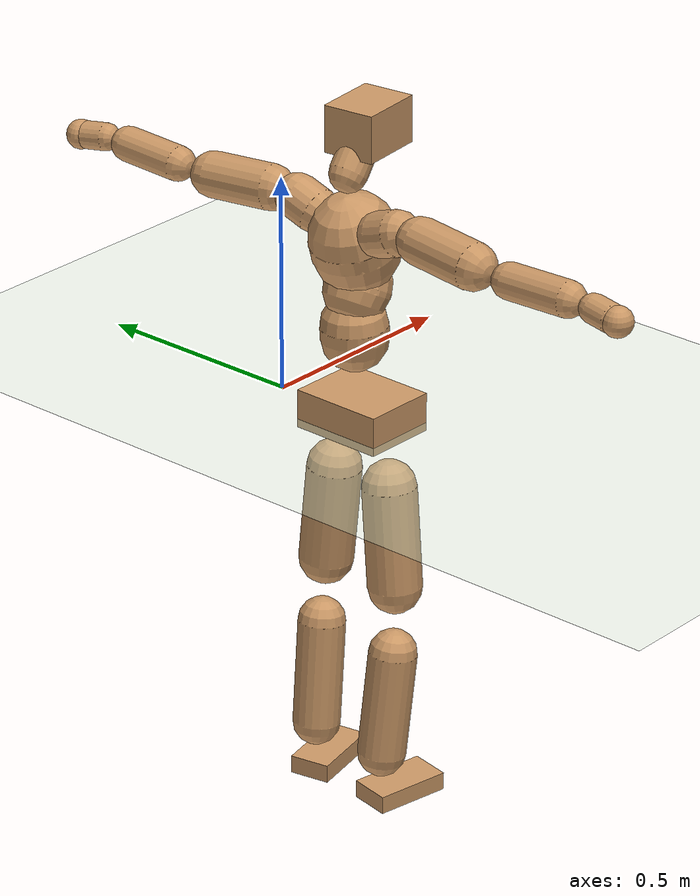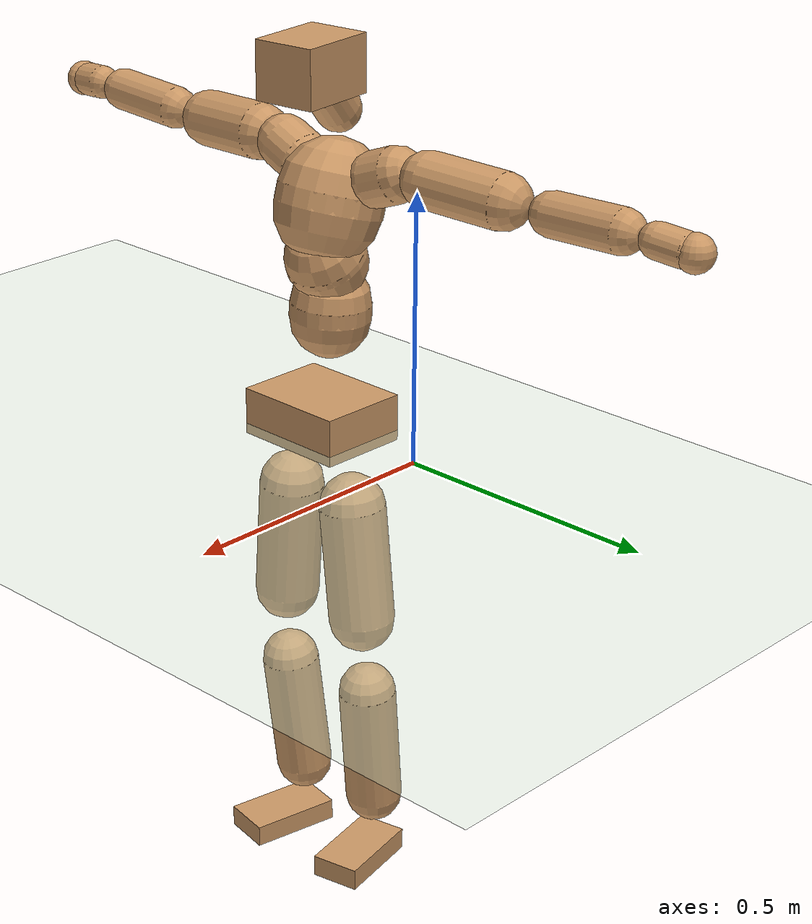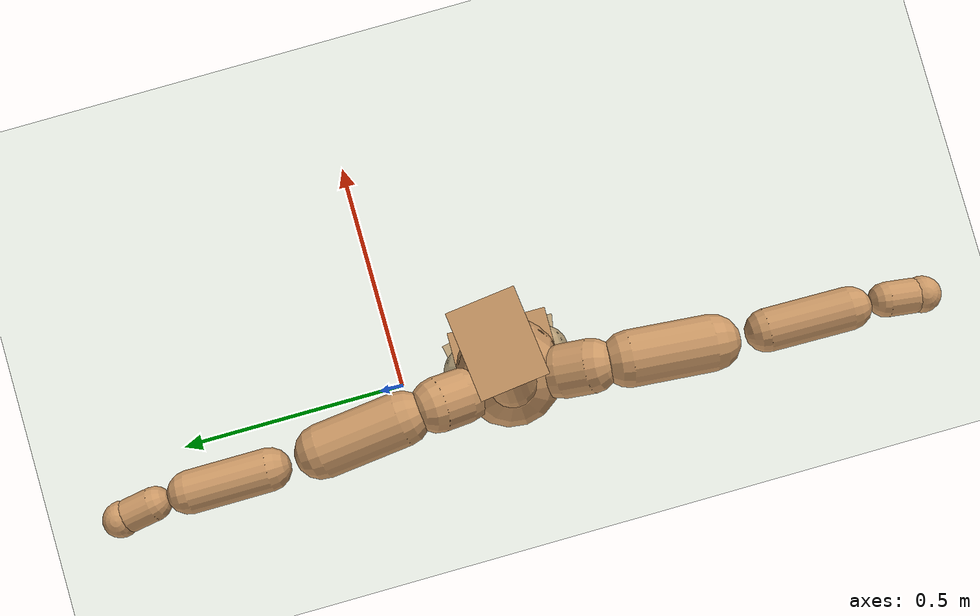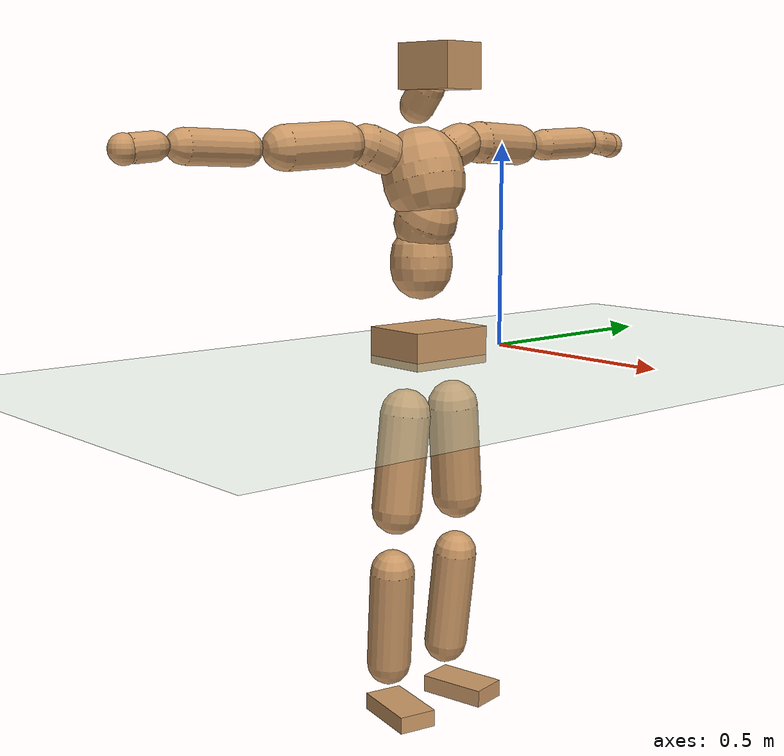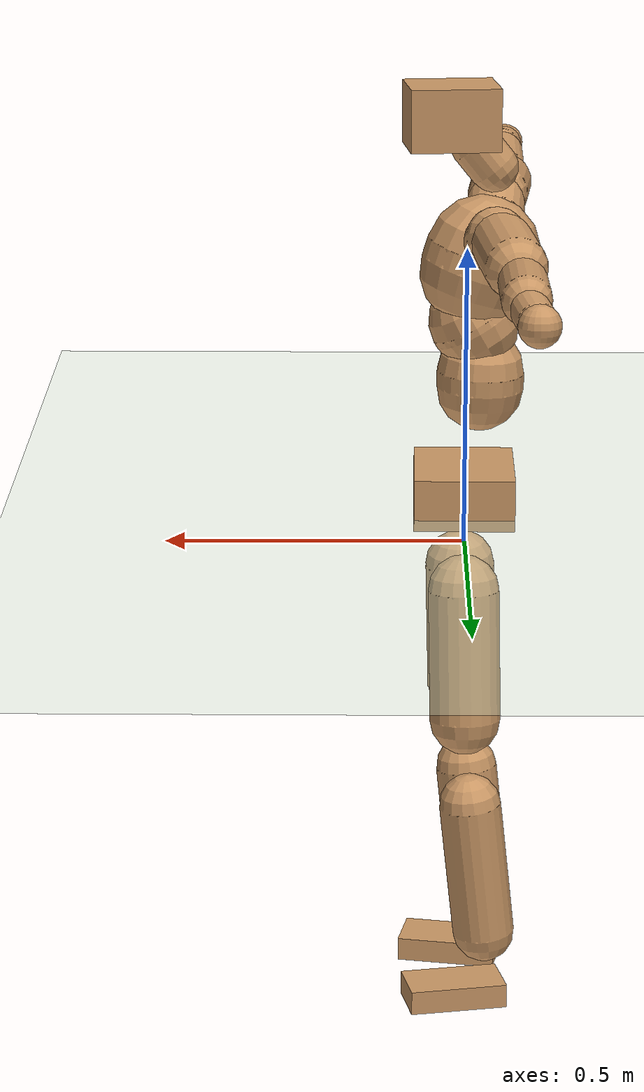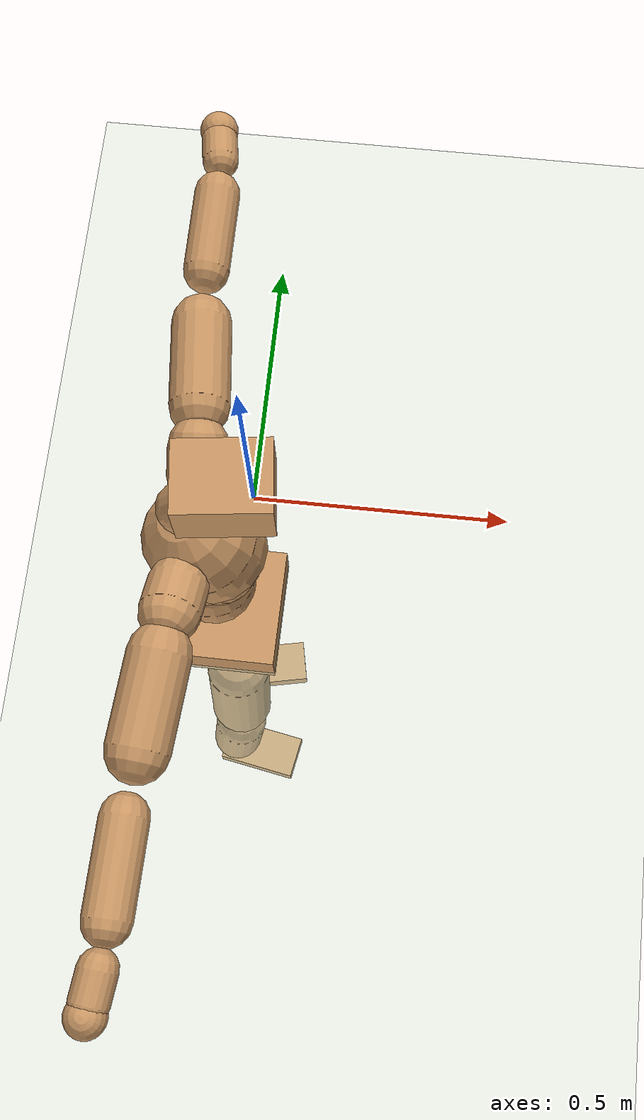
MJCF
<mujoco model="humanoid">
  <compiler coordinate="local" angle="radian"/>
  <default>
    <joint damping="0.0" armature="0.01" stiffness="0.0" limited="true"/>
    <geom conaffinity="1" condim="3" contype="7" margin="0.001" rgba="0.8 0.6 .4 1"/>
  </default>
  <asset>
    <texture type="skybox" builtin="gradient" rgb1=".4 .5 .6" rgb2="0 0 0" width="100" height="100"/>
    <texture builtin="flat" height="1278" mark="cross" markrgb="1 1 1" name="texgeom" random="0.01" rgb1="0.8 0.6 0.4" rgb2="0.8 0.6 0.4" type="cube" width="127"/>
    <texture builtin="checker" height="100" name="texplane" rgb1="0 0 0" rgb2="0.8 0.8 0.8" type="2d" width="100"/>
    <material name="MatPlane" reflectance="0.5" shininess="1" specular="1" texrepeat="60 60" texture="texplane"/>
    <material name="geom" texture="texgeom" texuniform="true"/>
  </asset>
  <worldbody>
    <light cutoff="100" diffuse="1 1 1" dir="-0 0 -1.3" directional="true" exponent="1" pos="0 0 1.3" specular=".1 .1 .1"/>
    <geom conaffinity="1" condim="3" name="floor" pos="0 0 0" rgba="0.8 0.9 0.8 1" size="100 100 .2" type="plane" material="MatPlane"/>
    <body name="Pelvis" pos="0.0004 -0.2364 0.0361">
      <freejoint name="Pelvis"/>
      <geom type="box" contype="1" conaffinity="1" density="500" pos="-0.0056 0.0001 -0.0131" size="0.0865 0.1093 0.0446" quat="1.0000 0.0000 0.0000 -0.0047" name="Pelvis"/>
      <body name="L_Hip" pos="-0.0038 0.0725 -0.0959">
        <joint name="L_Hip_x" type="hinge" pos="0 0 0" axis="1 0 0" stiffness="800" damping="80" armature="0.02" range="-180.0000 180.0000"/>
        <joint name="L_Hip_y" type="hinge" pos="0 0 0" axis="0 1 0" stiffness="800" damping="80" armature="0.02" range="-180.0000 180.0000"/>
        <joint name="L_Hip_z" type="hinge" pos="0 0 0" axis="0 0 1" stiffness="800" damping="80" armature="0.02" range="-180.0000 180.0000"/>
        <geom type="capsule" contype="1" conaffinity="1" density="500" fromto="-0.0016 0.0067 -0.0766 -0.0064 0.0268 -0.3064" size="0.062" name="L_Hip"/>
        <body name="L_Knee" pos="-0.008 0.0335 -0.383">
          <joint name="L_Knee_x" type="hinge" pos="0 0 0" axis="1 0 0" stiffness="800" damping="80" armature="0.02" range="-180.0000 180.0000"/>
          <joint name="L_Knee_y" type="hinge" pos="0 0 0" axis="0 1 0" stiffness="800" damping="80" armature="0.02" range="-180.0000 180.0000"/>
          <joint name="L_Knee_z" type="hinge" pos="0 0 0" axis="0 0 1" stiffness="800" damping="80" armature="0.02" range="-180.0000 180.0000"/>
          <geom type="capsule" contype="1" conaffinity="1" density="500" fromto="-0.0089 -0.0025 -0.0814 -0.0357 -0.0098 -0.3256" size="0.0544" name="L_Knee"/>
          <body name="L_Ankle" pos="-0.0446 -0.0123 -0.4069">
            <joint name="L_Ankle_x" type="hinge" pos="0 0 0" axis="1 0 0" stiffness="800" damping="80" armature="0.02" range="-180.0000 180.0000"/>
            <joint name="L_Ankle_y" type="hinge" pos="0 0 0" axis="0 1 0" stiffness="800" damping="80" armature="0.02" range="-180.0000 180.0000"/>
            <joint name="L_Ankle_z" type="hinge" pos="0 0 0" axis="0 0 1" stiffness="800" damping="80" armature="0.02" range="-180.0000 180.0000"/>
            <geom type="box" contype="1" conaffinity="1" density="500" pos="0.0607 0.0124 -0.0292" size="0.0864 0.0467 0.0212" quat="0.9950 0.0000 0.0000 0.1003" name="L_Ankle"/>
            <body name="L_Toe" pos="0.1213 0.0247 -0.0584">
              <joint name="L_Toe_x" type="hinge" pos="0 0 0" axis="1 0 0" stiffness="500" damping="50" armature="0.02" range="-180.0000 180.0000"/>
              <joint name="L_Toe_y" type="hinge" pos="0 0 0" axis="0 1 0" stiffness="500" damping="50" armature="0.02" range="-180.0000 180.0000"/>
              <joint name="L_Toe_z" type="hinge" pos="0 0 0" axis="0 0 1" stiffness="500" damping="50" armature="0.02" range="-180.0000 180.0000"/>
              <geom type="box" contype="1" conaffinity="1" density="500" pos="0.0000 0.0000 0.0291" size="0.0009 0.0023 0.0011" quat="0.9943 0.0000 0.0000 0.1064" name="L_Toe"/>
            </body>
          </body>
        </body>
      </body>
      <body name="R_Hip" pos="-0.0009 -0.069 -0.0955">
        <joint name="R_Hip_x" type="hinge" pos="0 0 0" axis="1 0 0" stiffness="800" damping="80" armature="0.02" range="-180.0000 180.0000"/>
        <joint name="R_Hip_y" type="hinge" pos="0 0 0" axis="0 1 0" stiffness="800" damping="80" armature="0.02" range="-180.0000 180.0000"/>
        <joint name="R_Hip_z" type="hinge" pos="0 0 0" axis="0 0 1" stiffness="800" damping="80" armature="0.02" range="-180.0000 180.0000"/>
        <geom type="capsule" contype="1" conaffinity="1" density="500" fromto="-0.0020 -0.0078 -0.0782 -0.0081 -0.0311 -0.3126" size="0.0612" name="R_Hip"/>
        <body name="R_Knee" pos="-0.0101 -0.0388 -0.3908">
          <joint name="R_Knee_x" type="hinge" pos="0 0 0" axis="1 0 0" stiffness="800" damping="80" armature="0.02" range="-180.0000 180.0000"/>
          <joint name="R_Knee_y" type="hinge" pos="0 0 0" axis="0 1 0" stiffness="800" damping="80" armature="0.02" range="-180.0000 180.0000"/>
          <joint name="R_Knee_z" type="hinge" pos="0 0 0" axis="0 0 1" stiffness="800" damping="80" armature="0.02" range="-180.0000 180.0000"/>
          <geom type="capsule" contype="1" conaffinity="1" density="500" fromto="-0.0088 0.0029 -0.0816 -0.0351 0.0118 -0.3264" size="0.0547" name="R_Knee"/>
          <body name="R_Ankle" pos="-0.0439 0.0147 -0.408">
            <joint name="R_Ankle_x" type="hinge" pos="0 0 0" axis="1 0 0" stiffness="800" damping="80" armature="0.02" range="-180.0000 180.0000"/>
            <joint name="R_Ankle_y" type="hinge" pos="0 0 0" axis="0 1 0" stiffness="800" damping="80" armature="0.02" range="-180.0000 180.0000"/>
            <joint name="R_Ankle_z" type="hinge" pos="0 0 0" axis="0 0 1" stiffness="800" damping="80" armature="0.02" range="-180.0000 180.0000"/>
            <geom type="box" contype="1" conaffinity="1" density="500" pos="0.0623 -0.0117 -0.0242" size="0.0878 0.0474 0.0207" quat="0.9957 0.0000 0.0000 -0.0923" name="R_Ankle"/>
            <body name="R_Toe" pos="0.1246 -0.0233 -0.0484">
              <joint name="R_Toe_x" type="hinge" pos="0 0 0" axis="1 0 0" stiffness="500" damping="50" armature="0.02" range="-180.0000 180.0000"/>
              <joint name="R_Toe_y" type="hinge" pos="0 0 0" axis="0 1 0" stiffness="500" damping="50" armature="0.02" range="-180.0000 180.0000"/>
              <joint name="R_Toe_z" type="hinge" pos="0 0 0" axis="0 0 1" stiffness="500" damping="50" armature="0.02" range="-180.0000 180.0000"/>
              <geom type="box" contype="1" conaffinity="1" density="500" pos="0.0000 0.0000 0.0270" size="0.0009 0.0024 0.0012" quat="0.9965 0.0000 0.0000 -0.0833" name="R_Toe"/>
            </body>
          </body>
        </body>
      </body>
      <body name="Torso" pos="-0.0289 -0.0032 0.1125">
        <joint name="Torso_x" type="hinge" pos="0 0 0" axis="1 0 0" stiffness="1000" damping="100" armature="0.02" range="-180.0000 180.0000"/>
        <joint name="Torso_y" type="hinge" pos="0 0 0" axis="0 1 0" stiffness="1000" damping="100" armature="0.02" range="-180.0000 180.0000"/>
        <joint name="Torso_z" type="hinge" pos="0 0 0" axis="0 0 1" stiffness="1000" damping="100" armature="0.02" range="-180.0000 180.0000"/>
        <geom type="capsule" contype="1" conaffinity="1" density="500" fromto="-0.0032 0.0025 0.0861 -0.0021 0.0016 0.0574" size="0.0752" name="Torso"/>
        <body name="Spine" pos="-0.0053 0.0041 0.1436">
          <joint name="Spine_x" type="hinge" pos="0 0 0" axis="1 0 0" stiffness="1000" damping="100" armature="0.02" range="-180.0000 180.0000"/>
          <joint name="Spine_y" type="hinge" pos="0 0 0" axis="0 1 0" stiffness="1000" damping="100" armature="0.02" range="-180.0000 180.0000"/>
          <joint name="Spine_z" type="hinge" pos="0 0 0" axis="0 0 1" stiffness="1000" damping="100" armature="0.02" range="-180.0000 180.0000"/>
          <geom type="capsule" contype="1" conaffinity="1" density="500" fromto="0.0184 0.0009 0.0325 0.0122 0.0006 0.0217" size="0.075" name="Spine"/>
          <body name="Chest" pos="0.0306 0.0015 0.0542">
            <joint name="Chest_x" type="hinge" pos="0 0 0" axis="1 0 0" stiffness="1000" damping="100" armature="0.02" range="-180.0000 180.0000"/>
            <joint name="Chest_y" type="hinge" pos="0 0 0" axis="0 1 0" stiffness="1000" damping="100" armature="0.02" range="-180.0000 180.0000"/>
            <joint name="Chest_z" type="hinge" pos="0 0 0" axis="0 0 1" stiffness="1000" damping="100" armature="0.02" range="-180.0000 180.0000"/>
            <geom type="capsule" contype="1" conaffinity="1" density="500" fromto="-0.0300 -0.0007 0.0965 -0.0200 -0.0004 0.0643" size="0.0986" name="Chest"/>
            <body name="Neck" pos="-0.0566 -0.0015 0.2294">
              <joint name="Neck_x" type="hinge" pos="0 0 0" axis="1 0 0" stiffness="500" damping="50" armature="0.02" range="-180.0000 180.0000"/>
              <joint name="Neck_y" type="hinge" pos="0 0 0" axis="0 1 0" stiffness="500" damping="50" armature="0.02" range="-180.0000 180.0000"/>
              <joint name="Neck_z" type="hinge" pos="0 0 0" axis="0 0 1" stiffness="500" damping="50" armature="0.02" range="-180.0000 180.0000"/>
              <geom type="capsule" contype="1" conaffinity="1" density="500" fromto="0.0108 0.0009 0.0135 0.0434 0.0036 0.0540" size="0.0424" name="Neck"/>
              <body name="Head" pos="0.0542 0.0045 0.0675">
                <joint name="Head_x" type="hinge" pos="0 0 0" axis="1 0 0" stiffness="500" damping="50" armature="0.02" range="-180.0000 180.0000"/>
                <joint name="Head_y" type="hinge" pos="0 0 0" axis="0 1 0" stiffness="500" damping="50" armature="0.02" range="-180.0000 180.0000"/>
                <joint name="Head_z" type="hinge" pos="0 0 0" axis="0 0 1" stiffness="500" damping="50" armature="0.02" range="-180.0000 180.0000"/>
                <geom type="box" contype="1" conaffinity="1" density="500" pos="0.0281 0.0033 0.0347" size="0.0763 0.0596 0.0531" quat="0.9983 0.0000 0.0000 0.0580" name="Head"/>
              </body>
            </body>
            <body name="L_Thorax" pos="-0.0437 0.0741 0.1277">
              <joint name="L_Thorax_x" type="hinge" pos="0 0 0" axis="1 0 0" stiffness="500" damping="50" armature="0.02" range="-180.0000 180.0000"/>
              <joint name="L_Thorax_y" type="hinge" pos="0 0 0" axis="0 1 0" stiffness="500" damping="50" armature="0.02" range="-180.0000 180.0000"/>
              <joint name="L_Thorax_z" type="hinge" pos="0 0 0" axis="0 0 1" stiffness="500" damping="50" armature="0.02" range="-180.0000 180.0000"/>
              <geom type="capsule" contype="1" conaffinity="1" density="500" fromto="-0.0010 0.0164 0.0062 -0.0040 0.0656 0.0250" size="0.0511" name="L_Thorax"/>
              <body name="L_Shoulder" pos="-0.005 0.082 0.0312">
                <joint name="L_Shoulder_x" type="hinge" pos="0 0 0" axis="1 0 0" stiffness="500" damping="50" armature="0.02" range="-720.0000 720.0000"/>
                <joint name="L_Shoulder_y" type="hinge" pos="0 0 0" axis="0 1 0" stiffness="500" damping="50" armature="0.02" range="-720.0000 720.0000"/>
                <joint name="L_Shoulder_z" type="hinge" pos="0 0 0" axis="0 0 1" stiffness="500" damping="50" armature="0.02" range="-720.0000 720.0000"/>
                <geom type="capsule" contype="1" conaffinity="1" density="500" fromto="-0.0057 0.0512 -0.0023 -0.0228 0.2047 -0.0094" size="0.0512" name="L_Shoulder"/>
                <body name="L_Elbow" pos="-0.0285 0.2559 -0.0117">
                  <joint name="L_Elbow_x" type="hinge" pos="0 0 0" axis="1 0 0" stiffness="500" damping="50" armature="0.02" range="-720.0000 720.0000"/>
                  <joint name="L_Elbow_y" type="hinge" pos="0 0 0" axis="0 1 0" stiffness="500" damping="50" armature="0.02" range="-720.0000 720.0000"/>
                  <joint name="L_Elbow_z" type="hinge" pos="0 0 0" axis="0 0 1" stiffness="500" damping="50" armature="0.02" range="-720.0000 720.0000"/>
                  <geom type="capsule" contype="1" conaffinity="1" density="500" fromto="0.0001 0.0492 0.0019 0.0004 0.1967 0.0074" size="0.0397" name="L_Elbow"/>
                  <body name="L_Wrist" pos="0.0005 0.2459 0.0093">
                    <joint name="L_Wrist_x" type="hinge" pos="0 0 0" axis="1 0 0" stiffness="300" damping="30" armature="0.02" range="-180.0000 180.0000"/>
                    <joint name="L_Wrist_y" type="hinge" pos="0 0 0" axis="0 1 0" stiffness="300" damping="30" armature="0.02" range="-180.0000 180.0000"/>
                    <joint name="L_Wrist_z" type="hinge" pos="0 0 0" axis="0 0 1" stiffness="300" damping="30" armature="0.02" range="-180.0000 180.0000"/>
                    <geom type="capsule" contype="1" conaffinity="1" density="500" fromto="-0.0028 0.0166 -0.0020 -0.0111 0.0664 -0.0080" size="0.0314" name="L_Wrist"/>
                    <body name="L_Hand" pos="-0.0139 0.083 -0.01">
                      <joint name="L_Hand_x" type="hinge" pos="0 0 0" axis="1 0 0" stiffness="300" damping="30" armature="0.02" range="-180.0000 180.0000"/>
                      <joint name="L_Hand_y" type="hinge" pos="0 0 0" axis="0 1 0" stiffness="300" damping="30" armature="0.02" range="-180.0000 180.0000"/>
                      <joint name="L_Hand_z" type="hinge" pos="0 0 0" axis="0 0 1" stiffness="300" damping="30" armature="0.02" range="-180.0000 180.0000"/>
                      <geom type="sphere" contype="1" conaffinity="1" density="500" size="0.0335" pos="0.0000 0.0000 0.0000" name="L_Hand"/>
                    </body>
                  </body>
                </body>
              </body>
            </body>
            <body name="R_Thorax" pos="-0.0499 -0.076 0.1254">
              <joint name="R_Thorax_x" type="hinge" pos="0 0 0" axis="1 0 0" stiffness="500" damping="50" armature="0.02" range="-180.0000 180.0000"/>
              <joint name="R_Thorax_y" type="hinge" pos="0 0 0" axis="0 1 0" stiffness="500" damping="50" armature="0.02" range="-180.0000 180.0000"/>
              <joint name="R_Thorax_z" type="hinge" pos="0 0 0" axis="0 0 1" stiffness="500" damping="50" armature="0.02" range="-180.0000 180.0000"/>
              <geom type="capsule" contype="1" conaffinity="1" density="500" fromto="-0.0015 -0.0175 0.0064 -0.0059 -0.0698 0.0256" size="0.0505" name="R_Thorax"/>
              <body name="R_Shoulder" pos="-0.0074 -0.0873 0.0319">
                <joint name="R_Shoulder_x" type="hinge" pos="0 0 0" axis="1 0 0" stiffness="500" damping="50" armature="0.02" range="-720.0000 720.0000"/>
                <joint name="R_Shoulder_y" type="hinge" pos="0 0 0" axis="0 1 0" stiffness="500" damping="50" armature="0.02" range="-720.0000 720.0000"/>
                <joint name="R_Shoulder_z" type="hinge" pos="0 0 0" axis="0 0 1" stiffness="500" damping="50" armature="0.02" range="-720.0000 720.0000"/>
                <geom type="capsule" contype="1" conaffinity="1" density="500" fromto="-0.0044 -0.0507 -0.0027 -0.0177 -0.2030 -0.0109" size="0.0525" name="R_Shoulder"/>
                <body name="R_Elbow" pos="-0.0221 -0.2537 -0.0136">
                  <joint name="R_Elbow_x" type="hinge" pos="0 0 0" axis="1 0 0" stiffness="500" damping="50" armature="0.02" range="-720.0000 720.0000"/>
                  <joint name="R_Elbow_y" type="hinge" pos="0 0 0" axis="0 1 0" stiffness="500" damping="50" armature="0.02" range="-720.0000 720.0000"/>
                  <joint name="R_Elbow_z" type="hinge" pos="0 0 0" axis="0 0 1" stiffness="500" damping="50" armature="0.02" range="-720.0000 720.0000"/>
                  <geom type="capsule" contype="1" conaffinity="1" density="500" fromto="-0.0008 -0.0510 0.0020 -0.0031 -0.2040 0.0079" size="0.0399" name="R_Elbow"/>
                  <body name="R_Wrist" pos="-0.0038 -0.2551 0.0099">
                    <joint name="R_Wrist_x" type="hinge" pos="0 0 0" axis="1 0 0" stiffness="300" damping="30" armature="0.02" range="-180.0000 180.0000"/>
                    <joint name="R_Wrist_y" type="hinge" pos="0 0 0" axis="0 1 0" stiffness="300" damping="30" armature="0.02" range="-180.0000 180.0000"/>
                    <joint name="R_Wrist_z" type="hinge" pos="0 0 0" axis="0 0 1" stiffness="300" damping="30" armature="0.02" range="-180.0000 180.0000"/>
                    <geom type="capsule" contype="1" conaffinity="1" density="500" fromto="-0.0022 -0.0168 -0.0015 -0.0087 -0.0673 -0.0059" size="0.0322" name="R_Wrist"/>
                    <body name="R_Hand" pos="-0.0109 -0.0841 -0.0073">
                      <joint name="R_Hand_x" type="hinge" pos="0 0 0" axis="1 0 0" stiffness="300" damping="30" armature="0.02" range="-180.0000 180.0000"/>
                      <joint name="R_Hand_y" type="hinge" pos="0 0 0" axis="0 1 0" stiffness="300" damping="30" armature="0.02" range="-180.0000 180.0000"/>
                      <joint name="R_Hand_z" type="hinge" pos="0 0 0" axis="0 0 1" stiffness="300" damping="30" armature="0.02" range="-180.0000 180.0000"/>
                      <geom type="sphere" contype="1" conaffinity="1" density="500" size="0.0338" pos="0.0000 0.0000 0.0000" name="R_Hand"/>
                    </body>
                  </body>
                </body>
              </body>
            </body>
          </body>
        </body>
      </body>
    </body>
  </worldbody>
  <actuator>
    <motor name="L_Hip_x" joint="L_Hip_x" gear="500"/>
    <motor name="L_Hip_y" joint="L_Hip_y" gear="500"/>
    <motor name="L_Hip_z" joint="L_Hip_z" gear="500"/>
    <motor name="L_Knee_x" joint="L_Knee_x" gear="500"/>
    <motor name="L_Knee_y" joint="L_Knee_y" gear="500"/>
    <motor name="L_Knee_z" joint="L_Knee_z" gear="500"/>
    <motor name="L_Ankle_x" joint="L_Ankle_x" gear="500"/>
    <motor name="L_Ankle_y" joint="L_Ankle_y" gear="500"/>
    <motor name="L_Ankle_z" joint="L_Ankle_z" gear="500"/>
    <motor name="L_Toe_x" joint="L_Toe_x" gear="500"/>
    <motor name="L_Toe_y" joint="L_Toe_y" gear="500"/>
    <motor name="L_Toe_z" joint="L_Toe_z" gear="500"/>
    <motor name="R_Hip_x" joint="R_Hip_x" gear="500"/>
    <motor name="R_Hip_y" joint="R_Hip_y" gear="500"/>
    <motor name="R_Hip_z" joint="R_Hip_z" gear="500"/>
    <motor name="R_Knee_x" joint="R_Knee_x" gear="500"/>
    <motor name="R_Knee_y" joint="R_Knee_y" gear="500"/>
    <motor name="R_Knee_z" joint="R_Knee_z" gear="500"/>
    <motor name="R_Ankle_x" joint="R_Ankle_x" gear="500"/>
    <motor name="R_Ankle_y" joint="R_Ankle_y" gear="500"/>
    <motor name="R_Ankle_z" joint="R_Ankle_z" gear="500"/>
    <motor name="R_Toe_x" joint="R_Toe_x" gear="500"/>
    <motor name="R_Toe_y" joint="R_Toe_y" gear="500"/>
    <motor name="R_Toe_z" joint="R_Toe_z" gear="500"/>
    <motor name="Torso_x" joint="Torso_x" gear="500"/>
    <motor name="Torso_y" joint="Torso_y" gear="500"/>
    <motor name="Torso_z" joint="Torso_z" gear="500"/>
    <motor name="Spine_x" joint="Spine_x" gear="500"/>
    <motor name="Spine_y" joint="Spine_y" gear="500"/>
    <motor name="Spine_z" joint="Spine_z" gear="500"/>
    <motor name="Chest_x" joint="Chest_x" gear="500"/>
    <motor name="Chest_y" joint="Chest_y" gear="500"/>
    <motor name="Chest_z" joint="Chest_z" gear="500"/>
    <motor name="Neck_x" joint="Neck_x" gear="500"/>
    <motor name="Neck_y" joint="Neck_y" gear="500"/>
    <motor name="Neck_z" joint="Neck_z" gear="500"/>
    <motor name="Head_x" joint="Head_x" gear="500"/>
    <motor name="Head_y" joint="Head_y" gear="500"/>
    <motor name="Head_z" joint="Head_z" gear="500"/>
    <motor name="L_Thorax_x" joint="L_Thorax_x" gear="500"/>
    <motor name="L_Thorax_y" joint="L_Thorax_y" gear="500"/>
    <motor name="L_Thorax_z" joint="L_Thorax_z" gear="500"/>
    <motor name="L_Shoulder_x" joint="L_Shoulder_x" gear="500"/>
    <motor name="L_Shoulder_y" joint="L_Shoulder_y" gear="500"/>
    <motor name="L_Shoulder_z" joint="L_Shoulder_z" gear="500"/>
    <motor name="L_Elbow_x" joint="L_Elbow_x" gear="500"/>
    <motor name="L_Elbow_y" joint="L_Elbow_y" gear="500"/>
    <motor name="L_Elbow_z" joint="L_Elbow_z" gear="500"/>
    <motor name="L_Wrist_x" joint="L_Wrist_x" gear="500"/>
    <motor name="L_Wrist_y" joint="L_Wrist_y" gear="500"/>
    <motor name="L_Wrist_z" joint="L_Wrist_z" gear="500"/>
    <motor name="L_Hand_x" joint="L_Hand_x" gear="500"/>
    <motor name="L_Hand_y" joint="L_Hand_y" gear="500"/>
    <motor name="L_Hand_z" joint="L_Hand_z" gear="500"/>
    <motor name="R_Thorax_x" joint="R_Thorax_x" gear="500"/>
    <motor name="R_Thorax_y" joint="R_Thorax_y" gear="500"/>
    <motor name="R_Thorax_z" joint="R_Thorax_z" gear="500"/>
    <motor name="R_Shoulder_x" joint="R_Shoulder_x" gear="500"/>
    <motor name="R_Shoulder_y" joint="R_Shoulder_y" gear="500"/>
    <motor name="R_Shoulder_z" joint="R_Shoulder_z" gear="500"/>
    <motor name="R_Elbow_x" joint="R_Elbow_x" gear="500"/>
    <motor name="R_Elbow_y" joint="R_Elbow_y" gear="500"/>
    <motor name="R_Elbow_z" joint="R_Elbow_z" gear="500"/>
    <motor name="R_Wrist_x" joint="R_Wrist_x" gear="500"/>
    <motor name="R_Wrist_y" joint="R_Wrist_y" gear="500"/>
    <motor name="R_Wrist_z" joint="R_Wrist_z" gear="500"/>
    <motor name="R_Hand_x" joint="R_Hand_x" gear="500"/>
    <motor name="R_Hand_y" joint="R_Hand_y" gear="500"/>
    <motor name="R_Hand_z" joint="R_Hand_z" gear="500"/>
  </actuator>
  <contact>
    <exclude body1="Torso" body2="Chest"/>
    <exclude body1="Head" body2="Chest"/>
    <exclude body1="R_Knee" body2="R_Toe"/>
    <exclude body1="R_Knee" body2="L_Ankle"/>
    <exclude body1="R_Knee" body2="L_Toe"/>
    <exclude body1="L_Knee" body2="L_Toe"/>
    <exclude body1="L_Knee" body2="R_Ankle"/>
    <exclude body1="L_Knee" body2="R_Toe"/>
    <exclude body1="L_Shoulder" body2="Chest"/>
    <exclude body1="R_Shoulder" body2="Chest"/>
  </contact>
  <sensor/>
  <size njmax="700" nconmax="700"/>
</mujoco>
